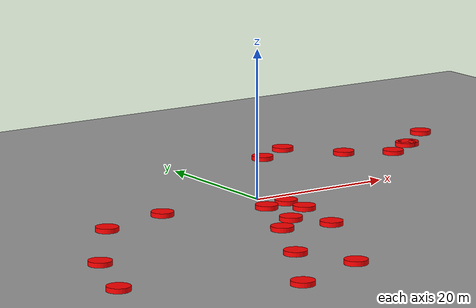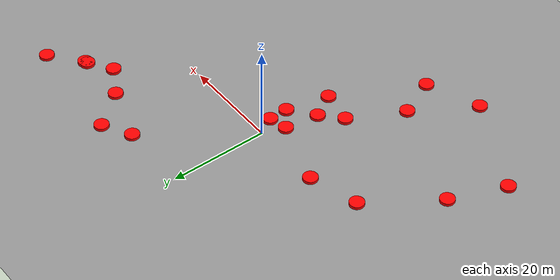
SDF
<sdf version="1.9">
 <world name="default">
  <model name="ground_plane">
   <static>true</static>
   <link name="link">
    <collision name="collision">
     <geometry><plane><normal>0 0 1</normal><size>100 100</size></plane></geometry>
     <surface><contact><collide_without_contact_bitmask>0x01</collide_without_contact_bitmask></contact></surface>
    </collision>
    <visual name="visual">
     <geometry><plane><normal>0 0 1</normal><size>100 100</size></plane></geometry>
     <material><ambient>0.6 0.6 0.6 1</ambient><diffuse>0.6 0.6 0.6 1</diffuse></material>
    </visual>
   </link>
  </model>
  <model name="moving_cylinder_0">
   <pose>-6.452755680776001 -14.963200562354935 0 0 0 0</pose>
   <link name="moving_link">
    <gravity>false</gravity>
    <visual name="visual">
     <geometry><cylinder><radius>1.5</radius><length>1.0</length></cylinder></geometry>
     <material><ambient>1 0 0 1</ambient></material>
    </visual>
   </link>
   <motion>
    <link_name>moving_link</link_name>
    <direction>-0.7071067811865475 0.7071067811865476 0</direction>
    <amplitude>15.0</amplitude>
    <speed>20.0</speed>
    <turnaround_threshold>0.5</turnaround_threshold>
   </motion>
  </model>
  <model name="moving_cylinder_1">
   <pose>-2.574321675909929 -11.325328236262564 0 0 0 0</pose>
   <link name="moving_link">
    <gravity>false</gravity>
    <visual name="visual">
     <geometry><cylinder><radius>1.5</radius><length>1.0</length></cylinder></geometry>
     <material><ambient>1 0 0 1</ambient></material>
    </visual>
   </link>
   <motion>
    <link_name>moving_link</link_name>
    <direction>-0.7071067811865475 0.7071067811865476 0</direction>
    <amplitude>15.0</amplitude>
    <speed>20.0</speed>
    <turnaround_threshold>0.5</turnaround_threshold>
   </motion>
  </model>
  <model name="moving_cylinder_2">
   <pose>19.97323095822354 22.967089496325443 0 0 0 0</pose>
   <link name="moving_link">
    <gravity>false</gravity>
    <visual name="visual">
     <geometry><cylinder><radius>1.5</radius><length>1.0</length></cylinder></geometry>
     <material><ambient>1 0 0 1</ambient></material>
    </visual>
   </link>
   <motion>
    <link_name>moving_link</link_name>
    <direction>0.7071067811865476 -0.7071067811865475 0</direction>
    <amplitude>15.0</amplitude>
    <speed>20.0</speed>
    <turnaround_threshold>0.5</turnaround_threshold>
   </motion>
  </model>
  <model name="moving_cylinder_3">
   <pose>14.34434296383034 19.77461895540547 0 0 0 0</pose>
   <link name="moving_link">
    <gravity>false</gravity>
    <visual name="visual">
     <geometry><cylinder><radius>1.5</radius><length>1.0</length></cylinder></geometry>
     <material><ambient>1 0 0 1</ambient></material>
    </visual>
   </link>
   <motion>
    <link_name>moving_link</link_name>
    <direction>-0.7071067811865475 0.7071067811865476 0</direction>
    <amplitude>15.0</amplitude>
    <speed>20.0</speed>
    <turnaround_threshold>0.5</turnaround_threshold>
   </motion>
  </model>
  <model name="moving_cylinder_4">
   <pose>0.2731237085419611 -16.205442126496436 0 0 0 0</pose>
   <link name="moving_link">
    <gravity>false</gravity>
    <visual name="visual">
     <geometry><cylinder><radius>1.5</radius><length>1.0</length></cylinder></geometry>
     <material><ambient>1 0 0 1</ambient></material>
    </visual>
   </link>
   <motion>
    <link_name>moving_link</link_name>
    <direction>0.7071067811865476 -0.7071067811865475 0</direction>
    <amplitude>15.0</amplitude>
    <speed>20.0</speed>
    <turnaround_threshold>0.5</turnaround_threshold>
   </motion>
  </model>
  <model name="moving_cylinder_5">
   <pose>-34.06098488378894 -16.535571545471093 0 0 0 0</pose>
   <link name="moving_link">
    <gravity>false</gravity>
    <visual name="visual">
     <geometry><cylinder><radius>1.5</radius><length>1.0</length></cylinder></geometry>
     <material><ambient>1 0 0 1</ambient></material>
    </visual>
   </link>
   <motion>
    <link_name>moving_link</link_name>
    <direction>0.7071067811865476 -0.7071067811865475 0</direction>
    <amplitude>15.0</amplitude>
    <speed>20.0</speed>
    <turnaround_threshold>0.5</turnaround_threshold>
   </motion>
  </model>
  <model name="moving_cylinder_6">
   <pose>-8.528898432297797 -33.414398712845276 0 0 0 0</pose>
   <link name="moving_link">
    <gravity>false</gravity>
    <visual name="visual">
     <geometry><cylinder><radius>1.5</radius><length>1.0</length></cylinder></geometry>
     <material><ambient>1 0 0 1</ambient></material>
    </visual>
   </link>
   <motion>
    <link_name>moving_link</link_name>
    <direction>0.7071067811865476 -0.7071067811865475 0</direction>
    <amplitude>15.0</amplitude>
    <speed>20.0</speed>
    <turnaround_threshold>0.5</turnaround_threshold>
   </motion>
  </model>
  <model name="moving_cylinder_7">
   <pose>36.25509315156396 15.56123752526141 0 0 0 0</pose>
   <link name="moving_link">
    <gravity>false</gravity>
    <visual name="visual">
     <geometry><cylinder><radius>1.5</radius><length>1.0</length></cylinder></geometry>
     <material><ambient>1 0 0 1</ambient></material>
    </visual>
   </link>
   <motion>
    <link_name>moving_link</link_name>
    <direction>-0.7071067811865475 0.7071067811865476 0</direction>
    <amplitude>15.0</amplitude>
    <speed>20.0</speed>
    <turnaround_threshold>0.5</turnaround_threshold>
   </motion>
  </model>
  <model name="moving_cylinder_8">
   <pose>2.228145906434741 -7.472031018197891 0 0 0 0</pose>
   <link name="moving_link">
    <gravity>false</gravity>
    <visual name="visual">
     <geometry><cylinder><radius>1.5</radius><length>1.0</length></cylinder></geometry>
     <material><ambient>1 0 0 1</ambient></material>
    </visual>
   </link>
   <motion>
    <link_name>moving_link</link_name>
    <direction>-0.7071067811865475 0.7071067811865476 0</direction>
    <amplitude>15.0</amplitude>
    <speed>20.0</speed>
    <turnaround_threshold>0.5</turnaround_threshold>
   </motion>
  </model>
  <model name="moving_cylinder_9">
   <pose>25.6311066375883 15.987109508725263 0 0 0 0</pose>
   <link name="moving_link">
    <gravity>false</gravity>
    <visual name="visual">
     <geometry><cylinder><radius>1.5</radius><length>1.0</length></cylinder></geometry>
     <material><ambient>1 0 0 1</ambient></material>
    </visual>
   </link>
   <motion>
    <link_name>moving_link</link_name>
    <direction>-0.7071067811865475 0.7071067811865476 0</direction>
    <amplitude>15.0</amplitude>
    <speed>20.0</speed>
    <turnaround_threshold>0.5</turnaround_threshold>
   </motion>
  </model>
  <model name="moving_cylinder_10">
   <pose>31.666663479924225 12.473899353359766 0 0 0 0</pose>
   <link name="moving_link">
    <gravity>false</gravity>
    <visual name="visual">
     <geometry><cylinder><radius>1.5</radius><length>1.0</length></cylinder></geometry>
     <material><ambient>1 0 0 1</ambient></material>
    </visual>
   </link>
   <motion>
    <link_name>moving_link</link_name>
    <direction>-0.7071067811865475 0.7071067811865476 0</direction>
    <amplitude>15.0</amplitude>
    <speed>20.0</speed>
    <turnaround_threshold>0.5</turnaround_threshold>
   </motion>
  </model>
  <model name="moving_cylinder_11">
   <pose>-11.94786790000763 -25.682439749263146 0 0 0 0</pose>
   <link name="moving_link">
    <gravity>false</gravity>
    <visual name="visual">
     <geometry><cylinder><radius>1.5</radius><length>1.0</length></cylinder></geometry>
     <material><ambient>1 0 0 1</ambient></material>
    </visual>
   </link>
   <motion>
    <link_name>moving_link</link_name>
    <direction>0.7071067811865476 -0.7071067811865475 0</direction>
    <amplitude>15.0</amplitude>
    <speed>20.0</speed>
    <turnaround_threshold>0.5</turnaround_threshold>
   </motion>
  </model>
  <model name="moving_cylinder_12">
   <pose>2.0781997932194782 -3.541438501924428 0 0 0 0</pose>
   <link name="moving_link">
    <gravity>false</gravity>
    <visual name="visual">
     <geometry><cylinder><radius>1.5</radius><length>1.0</length></cylinder></geometry>
     <material><ambient>1 0 0 1</ambient></material>
    </visual>
   </link>
   <motion>
    <link_name>moving_link</link_name>
    <direction>-0.7071067811865475 0.7071067811865476 0</direction>
    <amplitude>15.0</amplitude>
    <speed>20.0</speed>
    <turnaround_threshold>0.5</turnaround_threshold>
   </motion>
  </model>
  <model name="moving_cylinder_13">
   <pose>-14.775729615139351 -0.03269750529183657 0 0 0 0</pose>
   <link name="moving_link">
    <gravity>false</gravity>
    <visual name="visual">
     <geometry><cylinder><radius>1.5</radius><length>1.0</length></cylinder></geometry>
     <material><ambient>1 0 0 1</ambient></material>
    </visual>
   </link>
   <motion>
    <link_name>moving_link</link_name>
    <direction>-0.7071067811865475 0.7071067811865476 0</direction>
    <amplitude>15.0</amplitude>
    <speed>20.0</speed>
    <turnaround_threshold>0.5</turnaround_threshold>
   </motion>
  </model>
  <model name="moving_cylinder_14">
   <pose>-24.817093580879604 -2.8744382345216284 0 0 0 0</pose>
   <link name="moving_link">
    <gravity>false</gravity>
    <visual name="visual">
     <geometry><cylinder><radius>1.5</radius><length>1.0</length></cylinder></geometry>
     <material><ambient>1 0 0 1</ambient></material>
    </visual>
   </link>
   <motion>
    <link_name>moving_link</link_name>
    <direction>-0.7071067811865475 0.7071067811865476 0</direction>
    <amplitude>15.0</amplitude>
    <speed>20.0</speed>
    <turnaround_threshold>0.5</turnaround_threshold>
   </motion>
  </model>
  <model name="moving_cylinder_15">
   <pose>36.82773749134839 15.679231441310337 0 0 0 0</pose>
   <link name="moving_link">
    <gravity>false</gravity>
    <visual name="visual">
     <geometry><cylinder><radius>1.5</radius><length>1.0</length></cylinder></geometry>
     <material><ambient>1 0 0 1</ambient></material>
    </visual>
   </link>
   <motion>
    <link_name>moving_link</link_name>
    <direction>-0.7071067811865475 0.7071067811865476 0</direction>
    <amplitude>15.0</amplitude>
    <speed>20.0</speed>
    <turnaround_threshold>0.5</turnaround_threshold>
   </motion>
  </model>
  <model name="moving_cylinder_16">
   <pose>-19.29068721221693 -37.620965114710465 0 0 0 0</pose>
   <link name="moving_link">
    <gravity>false</gravity>
    <visual name="visual">
     <geometry><cylinder><radius>1.5</radius><length>1.0</length></cylinder></geometry>
     <material><ambient>1 0 0 1</ambient></material>
    </visual>
   </link>
   <motion>
    <link_name>moving_link</link_name>
    <direction>-0.7071067811865475 0.7071067811865476 0</direction>
    <amplitude>15.0</amplitude>
    <speed>20.0</speed>
    <turnaround_threshold>0.5</turnaround_threshold>
   </motion>
  </model>
  <model name="moving_cylinder_17">
   <pose>-1.6028169014705098 -4.445802124904015 0 0 0 0</pose>
   <link name="moving_link">
    <gravity>false</gravity>
    <visual name="visual">
     <geometry><cylinder><radius>1.5</radius><length>1.0</length></cylinder></geometry>
     <material><ambient>1 0 0 1</ambient></material>
    </visual>
   </link>
   <motion>
    <link_name>moving_link</link_name>
    <direction>0.7071067811865476 -0.7071067811865475 0</direction>
    <amplitude>15.0</amplitude>
    <speed>20.0</speed>
    <turnaround_threshold>0.5</turnaround_threshold>
   </motion>
  </model>
  <model name="moving_cylinder_18">
   <pose>-38.28300311238739 -27.6265443458578 0 0 0 0</pose>
   <link name="moving_link">
    <gravity>false</gravity>
    <visual name="visual">
     <geometry><cylinder><radius>1.5</radius><length>1.0</length></cylinder></geometry>
     <material><ambient>1 0 0 1</ambient></material>
    </visual>
   </link>
   <motion>
    <link_name>moving_link</link_name>
    <direction>0.7071067811865476 -0.7071067811865475 0</direction>
    <amplitude>15.0</amplitude>
    <speed>20.0</speed>
    <turnaround_threshold>0.5</turnaround_threshold>
   </motion>
  </model>
  <model name="moving_cylinder_19">
   <pose>42.91691352265408 20.726716239719742 0 0 0 0</pose>
   <link name="moving_link">
    <gravity>false</gravity>
    <visual name="visual">
     <geometry><cylinder><radius>1.5</radius><length>1.0</length></cylinder></geometry>
     <material><ambient>1 0 0 1</ambient></material>
    </visual>
   </link>
   <motion>
    <link_name>moving_link</link_name>
    <direction>-0.7071067811865475 0.7071067811865476 0</direction>
    <amplitude>15.0</amplitude>
    <speed>20.0</speed>
    <turnaround_threshold>0.5</turnaround_threshold>
   </motion>
  </model>
 </world>
</sdf>
